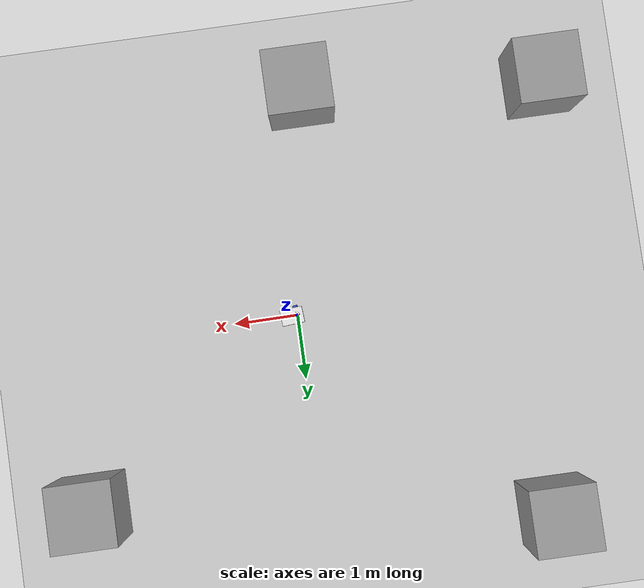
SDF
<sdf version="1.7">
 <world name="default">
  <light name="sun" type="directional">
   <pose>0 0 10 0 -0 0</pose>
   <diffuse>0.8 0.8 0.8 1</diffuse>
   <specular>0.2 0.2 0.2 1</specular>
   <attenuation>
    <range>1000</range>
    <constant>0.9</constant>
    <linear>0.01</linear>
    <quadratic>0.001</quadratic>
   </attenuation>
   <direction>-0.5 0.1 -0.9</direction>
   <spot><inner_angle>0</inner_angle><outer_angle>0</outer_angle><falloff>0</falloff></spot>
  </light>
  <model name="ground_plane">
   <static>1</static>
   <link name="link">
    <collision name="collision">
     <geometry><plane><normal>0 0 1</normal><size>100 100</size></plane></geometry>
     <surface><friction><ode><mu>100</mu><mu2>50</mu2></ode></friction></surface>
    </collision>
    <visual name="visual">
     <cast_shadows>0</cast_shadows>
     <geometry><plane><normal>0 0 1</normal><size>100 100</size></plane></geometry>
     <material>
      <script><uri>file://media/materials/scripts/gazebo.material</uri><name>Gazebo/Grey</name></script>
     </material>
    </visual>
   </link>
  </model>
  <gravity>0 0 -9.8</gravity>
  <magnetic_field>6e-06 2.3e-05 -4.2e-05</magnetic_field>
  <atmosphere type="adiabatic"/>
  <physics type="ode">
   <max_step_size>0.001</max_step_size>
   <real_time_factor>1</real_time_factor>
   <real_time_update_rate>1000</real_time_update_rate>
  </physics>
  <scene><ambient>0.4 0.4 0.4 1</ambient><background>0.7 0.7 0.7 1</background><shadows>1</shadows></scene>
  <spherical_coordinates>
   <surface_model>EARTH_WGS84</surface_model>
   <latitude_deg>0</latitude_deg>
   <longitude_deg>0</longitude_deg>
   <elevation>0</elevation>
   <heading_deg>0</heading_deg>
  </spherical_coordinates>
  <model name="my_bot">
   <link name="base_link">
    <inertial>
     <pose>0.075 0 0.078571 0 -0 0</pose>
     <mass>0.7</mass>
     <inertia>
      <ixx>0.00523507</ixx>
      <ixy>0</ixy>
      <ixz>0.0013125</ixz>
      <iyy>0.00886007</iyy>
      <iyz>0</iyz>
      <izz>0.00902233</izz>
     </inertia>
    </inertial>
    <collision name="base_link_fixed_joint_lump__chassis_collision">
     <pose>0.075 0 0.075 0 -0 0</pose>
     <geometry><box><size>0.35 0.25 0.15</size></box></geometry>
    </collision>
    <collision name="base_link_fixed_joint_lump__caster_wheel_collision_1">
     <pose>0.15 0 0 0 -0 0</pose>
     <geometry><sphere><radius>0.04</radius></sphere></geometry>
     <surface><friction><ode><mu>0.001</mu><mu2>0.001</mu2></ode></friction></surface>
    </collision>
    <collision name="base_link_fixed_joint_lump__laser_frame_collision_2">
     <pose>0 0 0.175 0 -0 0</pose>
     <geometry><cylinder><length>0.04</length><radius>0.05</radius></cylinder></geometry>
    </collision>
    <visual name="base_link_fixed_joint_lump__chassis_visual">
     <pose>0.075 0 0.075 0 -0 0</pose>
     <geometry><box><size>0.35 0.25 0.15</size></box></geometry>
     <material>
      <script><name>Gazebo/white</name><uri>file://media/materials/scripts/gazebo.material</uri></script>
     </material>
    </visual>
    <visual name="base_link_fixed_joint_lump__camera_link_visual_1">
     <pose>0.255 0 0.08 0 -0 0</pose>
     <geometry><box><size>0.01 0.03 0.03</size></box></geometry>
     <material>
      <script><name>Gazebo/Red</name><uri>file://media/materials/scripts/gazebo.material</uri></script>
     </material>
    </visual>
    <visual name="base_link_fixed_joint_lump__caster_wheel_visual_2">
     <pose>0.15 0 0 0 -0 0</pose>
     <geometry><sphere><radius>0.04</radius></sphere></geometry>
     <material>
      <script><name>Gazebo/black</name><uri>file://media/materials/scripts/gazebo.material</uri></script>
     </material>
    </visual>
    <visual name="base_link_fixed_joint_lump__laser_frame_visual_3">
     <pose>0 0 0.175 0 -0 0</pose>
     <geometry><cylinder><length>0.04</length><radius>0.05</radius></cylinder></geometry>
     <material>
      <script><name>Gazebo/Red</name><uri>file://media/materials/scripts/gazebo.material</uri></script>
     </material>
    </visual>
    <sensor name="camera" type="camera">
     <visualize>1</visualize>
     <update_rate>10</update_rate>
     <camera>
      <horizontal_fov>1.089</horizontal_fov>
      <image><format>R8G8B8</format><width>640</width><height>480</height></image>
      <clip><near>0.05</near><far>8</far></clip>
     </camera>
     <plugin name="camera_controller" filename="libgazebo_ros_camera.so">
      <frame_name>camera_link_optical</frame_name>
     </plugin>
     <pose>0.255 0 0.08 0 -0 0</pose>
    </sensor>
    <sensor name="laser" type="ray">
     <visualize>0</visualize>
     <update_rate>10</update_rate>
     <ray>
      <scan>
       <horizontal>
        <samples>360</samples>
        <min_angle>-3.14</min_angle>
        <max_angle>3.14</max_angle>
        <resolution>1</resolution>
       </horizontal>
       <vertical><samples>1</samples><min_angle>0</min_angle><max_angle>0</max_angle></vertical>
      </scan>
      <range><min>0.3</min><max>12</max></range>
     </ray>
     <plugin name="laser_controller" filename="libgazebo_ros_ray_sensor.so">
      <ros><argument>~/out:=scan</argument></ros>
      <output_type>sensor_msgs/LaserScan</output_type>
      <frame_name>laser_frame</frame_name>
     </plugin>
     <pose>0 0 0.175 0 -0 0</pose>
    </sensor>
   </link>
   <joint name="left_wheel_joint" type="revolute">
    <pose relative_to="base_link">0 0.1425 0 -1.5708 0 0</pose>
    <parent>base_link</parent>
    <child>left_wheel</child>
    <axis>
     <xyz>0 0 1</xyz>
     <limit><lower>-1e+16</lower><upper>1e+16</upper></limit>
     <dynamics><spring_reference>0</spring_reference><spring_stiffness>0</spring_stiffness></dynamics>
    </axis>
   </joint>
   <link name="left_wheel">
    <pose relative_to="left_wheel_joint">0 0 0 0 -0 0</pose>
    <inertial>
     <mass>0.1</mass>
     <inertia>
      <ixx>5.02083e-05</ixx>
      <ixy>0</ixy>
      <ixz>0</ixz>
      <iyy>5.02083e-05</iyy>
      <iyz>0</iyz>
      <izz>8e-05</izz>
     </inertia>
    </inertial>
    <collision name="left_wheel_collision">
     <geometry><cylinder><length>0.035</length><radius>0.04</radius></cylinder></geometry>
    </collision>
    <visual name="left_wheel_visual">
     <geometry><cylinder><length>0.035</length><radius>0.04</radius></cylinder></geometry>
     <material>
      <script><name>Gazebo/blue</name><uri>file://media/materials/scripts/gazebo.material</uri></script>
     </material>
    </visual>
   </link>
   <joint name="right_wheel_joint" type="revolute">
    <pose relative_to="base_link">0 -0.1425 0 1.5708 -0 0</pose>
    <parent>base_link</parent>
    <child>right_wheel</child>
    <axis>
     <xyz>0 0 -1</xyz>
     <limit><lower>-1e+16</lower><upper>1e+16</upper></limit>
     <dynamics><spring_reference>0</spring_reference><spring_stiffness>0</spring_stiffness></dynamics>
    </axis>
   </joint>
   <link name="right_wheel">
    <pose relative_to="right_wheel_joint">0 0 0 0 -0 0</pose>
    <inertial>
     <mass>0.1</mass>
     <inertia>
      <ixx>5.02083e-05</ixx>
      <ixy>0</ixy>
      <ixz>0</ixz>
      <iyy>5.02083e-05</iyy>
      <iyz>0</iyz>
      <izz>8e-05</izz>
     </inertia>
    </inertial>
    <collision name="right_wheel_collision">
     <geometry><cylinder><length>0.035</length><radius>0.04</radius></cylinder></geometry>
    </collision>
    <visual name="right_wheel_visual">
     <geometry><cylinder><length>0.035</length><radius>0.04</radius></cylinder></geometry>
     <material>
      <script><name>Gazebo/blue</name><uri>file://media/materials/scripts/gazebo.material</uri></script>
     </material>
    </visual>
   </link>
   <static>0</static>
   <plugin name="gazebo_ros2_control" filename="libgazebo_ros2_control.so">
    <parameters>/home/ertugrul/dev_ws/install/murphy_bot/share/murphy_bot/config/my_controllers.yaml</parameters>
    <parameters>/home/ertugrul/dev_ws/install/murphy_bot/share/murphy_bot/config/gaz_ros2_ctl_use_sim.yaml</parameters>
   </plugin>
   <pose>0.006963 -0.004792 0.04 -2e-06 2e-06 0.08252</pose>
  </model>
  <model name="unit_box">
   <pose>-3.51139 3.52872 0.5 -0 -0 -0</pose>
   <link name="link">
    <inertial>
     <mass>1</mass>
     <inertia>
      <ixx>0.166667</ixx>
      <ixy>0</ixy>
      <ixz>0</ixz>
      <iyy>0.166667</iyy>
      <iyz>0</iyz>
      <izz>0.166667</izz>
     </inertia>
    </inertial>
    <collision name="collision"><geometry><box><size>1 1 1</size></box></geometry></collision>
    <visual name="visual">
     <geometry><box><size>1 1 1</size></box></geometry>
     <material>
      <script><name>Gazebo/Grey</name><uri>file://media/materials/scripts/gazebo.material</uri></script>
     </material>
    </visual>
   </link>
  </model>
  <model name="unit_box_0">
   <pose>-0.496514 -3.48391 0.5 0 -0 0</pose>
   <link name="link">
    <inertial>
     <mass>1</mass>
     <inertia>
      <ixx>0.166667</ixx>
      <ixy>0</ixy>
      <ixz>0</ixz>
      <iyy>0.166667</iyy>
      <iyz>0</iyz>
      <izz>0.166667</izz>
     </inertia>
    </inertial>
    <collision name="collision"><geometry><box><size>1 1 1</size></box></geometry></collision>
    <visual name="visual">
     <geometry><box><size>1 1 1</size></box></geometry>
     <material>
      <script><name>Gazebo/Grey</name><uri>file://media/materials/scripts/gazebo.material</uri></script>
     </material>
    </visual>
   </link>
  </model>
  <model name="unit_box_1">
   <pose>3.51412 2.50813 0.5 -0 -0 -0</pose>
   <link name="link">
    <inertial>
     <mass>1</mass>
     <inertia>
      <ixx>0.166667</ixx>
      <ixy>0</ixy>
      <ixz>0</ixz>
      <iyy>0.166667</iyy>
      <iyz>0</iyz>
      <izz>0.166667</izz>
     </inertia>
    </inertial>
    <collision name="collision"><geometry><box><size>1 1 1</size></box></geometry></collision>
    <visual name="visual">
     <geometry><box><size>1 1 1</size></box></geometry>
     <material>
      <script><name>Gazebo/Grey</name><uri>file://media/materials/scripts/gazebo.material</uri></script>
     </material>
    </visual>
   </link>
  </model>
  <model name="unit_box_2">
   <pose>-4.25218 -3.14461 0.5 0 -0 0</pose>
   <link name="link">
    <inertial>
     <mass>1</mass>
     <inertia>
      <ixx>0.166667</ixx>
      <ixy>0</ixy>
      <ixz>0</ixz>
      <iyy>0.166667</iyy>
      <iyz>0</iyz>
      <izz>0.166667</izz>
     </inertia>
    </inertial>
    <collision name="collision"><geometry><box><size>1 1 1</size></box></geometry></collision>
    <visual name="visual">
     <geometry><box><size>1 1 1</size></box></geometry>
     <material>
      <script><name>Gazebo/Grey</name><uri>file://media/materials/scripts/gazebo.material</uri></script>
     </material>
    </visual>
   </link>
  </model>
 </world>
</sdf>
